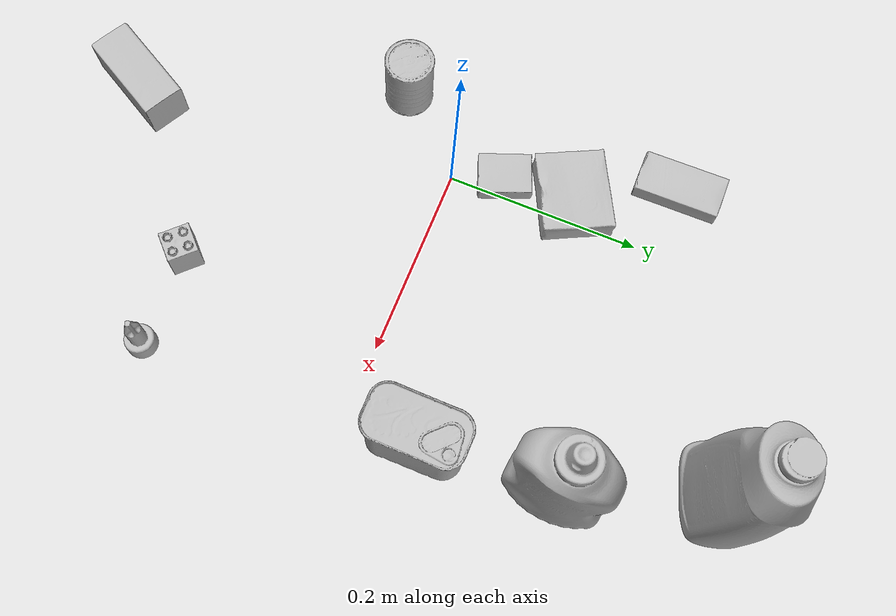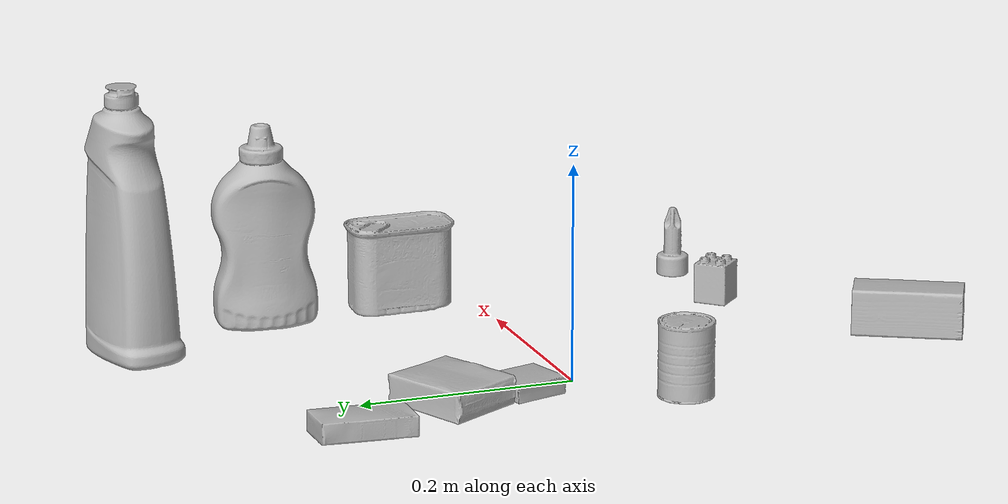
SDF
<sdf version="1.4">
  <world name="default">
    <light name="light1" type="point">
      <pose>0 0 1 0 0 0</pose>
      <diffuse>3 3 3 1</diffuse>
      <specular>3 3 3 1</specular>
    </light>
    <light name="light2" type="point">
      <pose>0 0.5 2 0 0 0</pose>
      <diffuse>1 1 1 1</diffuse>
      <specular>1 1 1 1</specular>
    </light>
    <light name="light3" type="point">
      <pose>0 0.5 2 0 0 0</pose>
      <diffuse>3 3 3 1</diffuse>
      <specular>3 3 3 1</specular>
    </light>
    <scene>
      <ambient>0.7 0.7 0.7</ambient>
    </scene>
    <model name="bottle1">
      <link name="link_bottle1">
        <collision name="default">
          <geometry>
            <mesh>
              <uri>model://bleach_cleanser/collision_meshes/collision.obj</uri>
              <scale>1.0 1.0 1.0</scale>
            </mesh>
          </geometry>
          <surface>
            <friction>
              <ode>
                <mu>0.5</mu>
                <mu2>0.5</mu2>
              </ode>
            </friction>
          <contact>
        <ode>
            <max_vel>0</max_vel>
            <min_depth>0.0001</min_depth>
            <kp>1e8</kp>
        </ode>
    </contact></surface>
        </collision>
        <visual name="default">
          <geometry>
            <mesh>
              <uri>model://bleach_cleanser/visual_meshes/visual.dae</uri>
              <scale>1.0 1.0 1.0</scale>
            </mesh>
          </geometry>
        </visual>
        <inertial>
          <mass>1.578364610671997</mass>
          <pose>0.00012193182919872925 0.003783882362768054 -0.024421613663434982 -0.07381669869228723 0.000420116582496686 -0.006875050642452563</pose>
          <inertia>
            <ixx>0.00768213</ixx>
            <iyy>0.0071586203</iyy>
            <izz>0.0013134446</izz>
            <ixy>0</ixy>
            <ixz>0</ixz>
            <iyz>0</iyz>
          </inertia>
        </inertial>
      </link>
      <pose>0.21065887808799744 0.3479423224925995 0.12578412890434265 -0.00019956883201037228 1.6447478870117232e-05 -1.2785718475436674</pose>
    </model>
    <model name="bottle2">
      <link name="link_bottle2">
        <collision name="default">
          <geometry>
            <mesh>
              <uri>model://mustard_bottle/collision_meshes/collision.obj</uri>
              <scale>1.0 1.0 1.0</scale>
            </mesh>
          </geometry>
          <surface>
            <friction>
              <ode>
                <mu>0.5</mu>
                <mu2>0.5</mu2>
              </ode>
            </friction>
          <contact>
        <ode>
            <max_vel>0</max_vel>
            <min_depth>0.0001</min_depth>
            <kp>1e8</kp>
        </ode>
    </contact></surface>
        </collision>
        <visual name="default">
          <geometry>
            <mesh>
              <uri>model://mustard_bottle/visual_meshes/visual.dae</uri>
              <scale>1.0 1.0 1.0</scale>
            </mesh>
          </geometry>
        </visual>
        <inertial>
          <mass>0.5896905064582825</mass>
          <pose>0.000503245391882956 -0.00015647403779439628 -0.0174757931381464 0.00041823284967905286 0.0009465779461724547 0.024853724225743102</pose>
          <inertia>
            <ixx>0.00163749</ixx>
            <iyy>0.0014367587</iyy>
            <izz>0.00043156123</izz>
            <ixy>0</ixy>
            <ixz>0</ixz>
            <iyz>0</iyz>
          </inertia>
        </inertial>
      </link>
      <pose>0.2634090781211853 0.20744812488555908 0.09583087265491486 -0.012050269193452761 -0.004890020589751272 -0.11364913993384985</pose>
    </model>
    <model name="toy1">
      <link name="link_toy1">
        <collision name="default">
          <geometry>
            <mesh>
              <uri>model://b_lego_duplo/collision_meshes/collision.obj</uri>
              <scale>1.0 1.0 1.0</scale>
            </mesh>
          </geometry>
          <surface>
            <friction>
              <ode>
                <mu>0.5</mu>
                <mu2>0.5</mu2>
              </ode>
            </friction>
          <contact>
        <ode>
            <max_vel>0</max_vel>
            <min_depth>0.0001</min_depth>
            <kp>1e8</kp>
        </ode>
    </contact></surface>
        </collision>
        <visual name="default">
          <geometry>
            <mesh>
              <uri>model://b_lego_duplo/visual_meshes/visual.dae</uri>
              <scale>1.0 1.0 1.0</scale>
            </mesh>
          </geometry>
        </visual>
        <inertial>
          <mass>0.04927889630198479</mass>
          <pose>-0.00011053016351070255 -9.152428901870735e-06 0.0019294293597340584 -0.03749545918935276 -0.026353596882306905 0.4519115393215097</pose>
          <inertia>
            <ixx>1.0085294e-05</ixx>
            <iyy>1.015309e-05</iyy>
            <izz>8.985672e-06</izz>
            <ixy>0</ixy>
            <ixz>0</ixz>
            <iyz>0</iyz>
          </inertia>
        </inertial>
      </link>
      <pose>0.18494507670402527 -0.21711574494838715 0.02181500382721424 -2.9226765524416934e-07 -3.281551262742486e-07 -0.7827550976956394</pose>
    </model>
    <model name="toy2">
      <link name="link_toy2">
        <collision name="default">
          <geometry>
            <mesh>
              <uri>model://d_toy_airplane/collision_meshes/collision.obj</uri>
              <scale>1.0 1.0 1.0</scale>
            </mesh>
          </geometry>
          <surface>
            <friction>
              <ode>
                <mu>0.5</mu>
                <mu2>0.5</mu2>
              </ode>
            </friction>
          <contact>
        <ode>
            <max_vel>0</max_vel>
            <min_depth>0.0001</min_depth>
            <kp>1e8</kp>
        </ode>
    </contact></surface>
        </collision>
        <visual name="default">
          <geometry>
            <mesh>
              <uri>model://d_toy_airplane/visual_meshes/visual.dae</uri>
              <scale>1.0 1.0 1.0</scale>
            </mesh>
          </geometry>
        </visual>
        <inertial>
          <mass>0.023543989285826683</mass>
          <pose>9.41029647947289e-05 -5.8093268307857215e-05 -0.011728093028068542 0.0002670074791080515 0.004678977428991067 0.5194709842729006</pose>
          <inertia>
            <ixx>7.058034e-06</ixx>
            <iyy>7.063356e-06</iyy>
            <izz>2.1308651e-06</izz>
            <ixy>0</ixy>
            <ixz>0</ixz>
            <iyz>0</iyz>
          </inertia>
        </inertial>
      </link>
      <pose>0.2836911976337433 -0.21355396509170532 0.03333878517150879 -3.994872837363172e-05 -0.00017525125162870634 1.9202847075281368</pose>
    </model>
    <model name="can1">
      <link name="link_can1">
        <collision name="default">
          <geometry>
            <mesh>
              <uri>model://master_chef_can/collision_meshes/collision.obj</uri>
              <scale>0.5 0.5 0.5</scale>
            </mesh>
          </geometry>
          <surface>
            <friction>
              <ode>
                <mu>0.5</mu>
                <mu2>0.5</mu2>
              </ode>
            </friction>
          <contact>
        <ode>
            <max_vel>0</max_vel>
            <min_depth>0.0001</min_depth>
            <kp>1e8</kp>
        </ode>
    </contact></surface>
        </collision>
        <visual name="default">
          <geometry>
            <mesh>
              <uri>model://master_chef_can/visual_meshes/visual.dae</uri>
              <scale>0.5 0.5 0.5</scale>
            </mesh>
          </geometry>
        </visual>
        <inertial>
          <mass>0.13489052653312683</mass>
          <pose>-4.6619643399026245e-05 1.392684936263322e-07 -5.080000119050965e-05 -0.0017995055981966167 0.0006479432683086387 -0.6102521024359563</pose>
          <inertia>
            <ixx>7.9171594e-05</ixx>
            <iyy>7.85889e-05</iyy>
            <izz>4.3748354e-05</izz>
            <ixy>0</ixy>
            <ixz>0</ixz>
            <iyz>0</iyz>
          </inertia>
        </inertial>
      </link>
      <pose>-0.07390523701906204 -0.07868801057338715 0.035301998257637024 -1.5688764482366685e-06 -1.1807300814428137e-06 2.818672878754001</pose>
    </model>
    <model name="can2">
      <link name="link_can2">
        <collision name="default">
          <geometry>
            <mesh>
              <uri>model://potted_meat_can/collision_meshes/collision.obj</uri>
              <scale>1.0 1.0 1.0</scale>
            </mesh>
          </geometry>
          <surface>
            <friction>
              <ode>
                <mu>0.5</mu>
                <mu2>0.5</mu2>
              </ode>
            </friction>
          <contact>
        <ode>
            <max_vel>0</max_vel>
            <min_depth>0.0001</min_depth>
            <kp>1e8</kp>
        </ode>
    </contact></surface>
        </collision>
        <visual name="default">
          <geometry>
            <mesh>
              <uri>model://potted_meat_can/visual_meshes/visual.dae</uri>
              <scale>1.0 1.0 1.0</scale>
            </mesh>
          </geometry>
        </visual>
        <inertial>
          <mass>0.4512253701686859</mass>
          <pose>0.00022888150124344975 -5.9891150158364326e-05 -0.0006367433816194534 -0.028093371406289817 -0.007232609295346345 0.015406271951796056</pose>
          <inertia>
            <ixx>0.00058045425</ixx>
            <iyy>0.00035267006</iyy>
            <izz>0.00042216998</izz>
            <ixy>0</ixy>
            <ixz>0</ixz>
            <iyz>0</iyz>
          </inertia>
        </inertial>
      </link>
      <pose>0.2711115777492523 0.07192216068506241 0.04212799668312073 -9.947793015815652e-08 -3.9772758901060585e-07 3.131273473850651</pose>
    </model>
    <model name="box1">
      <link name="link_box1">
        <collision name="default">
          <geometry>
            <mesh>
              <uri>model://pudding_box/collision_meshes/collision.obj</uri>
              <scale>0.5 0.5 0.5</scale>
            </mesh>
          </geometry>
          <surface>
            <friction>
              <ode>
                <mu>0.5</mu>
                <mu2>0.5</mu2>
              </ode>
            </friction>
          <contact>
        <ode>
            <max_vel>0</max_vel>
            <min_depth>0.0001</min_depth>
            <kp>1e8</kp>
        </ode>
    </contact></surface>
        </collision>
        <visual name="default">
          <geometry>
            <mesh>
              <uri>model://pudding_box/visual_meshes/visual.dae</uri>
              <scale>0.5 0.5 0.5</scale>
            </mesh>
          </geometry>
        </visual>
        <inertial>
          <mass>0.02510015107691288</mass>
          <pose>0.00024474109522998333 0.0004033942532259971 -0.0002594413817860186 0.005213101332996491 -0.0066037987089797995 0.020079823298230236</pose>
          <inertia>
            <ixx>7.093607e-06</ixx>
            <iyy>4.7726294e-06</iyy>
            <izz>1.04755645e-05</izz>
            <ixy>0</ixy>
            <ixz>0</ixz>
            <iyz>0</iyz>
          </inertia>
        </inertial>
      </link>
      <pose>-0.01922045275568962 0.05088913440704346 0.009862903505563736 0.022349857307870546 -0.01139075050949561 0.35466968536049454</pose>
    </model>
    <model name="box2">
      <link name="link_box2">
        <collision name="default">
          <geometry>
            <mesh>
              <uri>model://gelatin_box/collision_meshes/collision.obj</uri>
              <scale>1.0 1.0 1.0</scale>
            </mesh>
          </geometry>
          <surface>
            <friction>
              <ode>
                <mu>0.5</mu>
                <mu2>0.5</mu2>
              </ode>
            </friction>
          <contact>
        <ode>
            <max_vel>0</max_vel>
            <min_depth>0.0001</min_depth>
            <kp>1e8</kp>
        </ode>
    </contact></surface>
        </collision>
        <visual name="default">
          <geometry>
            <mesh>
              <uri>model://gelatin_box/visual_meshes/visual.dae</uri>
              <scale>1.0 1.0 1.0</scale>
            </mesh>
          </geometry>
        </visual>
        <inertial>
          <mass>0.2452477514743805</mass>
          <pose>0.000431961816502735 0.00011156871187267825 -0.0003640321083366871 -0.0010503720803081407 -0.004755818225601415 0.01644055574590794</pose>
          <inertia>
            <ixx>0.0001731249</ixx>
            <iyy>0.0001236622</iyy>
            <izz>0.00026353472</izz>
            <ixy>0</ixy>
            <ixz>0</ixz>
            <iyz>0</iyz>
          </inertia>
        </inertial>
      </link>
      <pose>-0.02525290660560131 0.12305345386266708 0.015168312937021255 0.005596603286054079 -0.007303603298598464 -1.1146342943114573</pose>
    </model>
    <model name="box3">
      <link name="link_box3">
        <collision name="default">
          <geometry>
            <mesh>
              <uri>model://sugar_box/collision_meshes/collision.obj</uri>
              <scale>0.5 0.5 0.5</scale>
            </mesh>
          </geometry>
          <surface>
            <friction>
              <ode>
                <mu>0.5</mu>
                <mu2>0.5</mu2>
              </ode>
            </friction>
          <contact>
        <ode>
            <max_vel>0</max_vel>
            <min_depth>0.0001</min_depth>
            <kp>1e8</kp>
        </ode>
    </contact></surface>
        </collision>
        <visual name="default">
          <geometry>
            <mesh>
              <uri>model://sugar_box/visual_meshes/visual.dae</uri>
              <scale>0.5 0.5 0.5</scale>
            </mesh>
          </geometry>
        </visual>
        <inertial>
          <mass>0.12277840822935104</mass>
          <pose>0.0005171863595023751 1.9245549992774613e-05 -0.00018182402709499002 -0.0004046257474220826 0.0010506635214397083 0.0026153787892127145</pose>
          <inertia>
            <ixx>2.5574656e-05</ixx>
            <iyy>8.2662555e-05</iyy>
            <izz>9.895694e-05</izz>
            <ixy>0</ixy>
            <ixz>0</ixz>
            <iyz>0</iyz>
          </inertia>
        </inertial>
      </link>
      <pose>-0.07680697739124298 0.2217143177986145 0.011399306356906891 0.0007751223413117025 -0.0234324778555135 1.5650808012671302</pose>
    </model>
    <model name="box4">
      <link name="link_box4">
        <collision name="default">
          <geometry>
            <mesh>
              <uri>model://wood_block/collision_meshes/collision.obj</uri>
              <scale>0.5 0.5 0.5</scale>
            </mesh>
          </geometry>
          <surface>
            <friction>
              <ode>
                <mu>0.5</mu>
                <mu2>0.5</mu2>
              </ode>
            </friction>
          <contact>
        <ode>
            <max_vel>0</max_vel>
            <min_depth>0.0001</min_depth>
            <kp>1e8</kp>
        </ode>
    </contact></surface>
        </collision>
        <visual name="default">
          <geometry>
            <mesh>
              <uri>model://wood_block/visual_meshes/visual.dae</uri>
              <scale>0.5 0.5 0.5</scale>
            </mesh>
          </geometry>
        </visual>
        <inertial>
          <mass>0.2967980206012726</mass>
          <pose>-2.9066577553749084e-06 -0.00028540470520965755 0.00013204291462898254 -0.05220902064674581 -0.005192696668457315 -0.006861378272965977</pose>
          <inertia>
            <ixx>9.929016e-05</ixx>
            <iyy>0.00031365763</iyy>
            <izz>0.00031248436</izz>
            <ixy>0</ixy>
            <ixz>0</ixz>
            <iyz>0</iyz>
          </inertia>
        </inertial>
      </link>
      <pose>0.02816212736070156 -0.3444570302963257 0.0226292721927166 -0.005208494821933265 0.005718672022582419 -2.064379878121474</pose>
    </model>
  <physics type="ode">
      <max_contacts>50</max_contacts>
      <ode>
        <solver>
          <type>quick</type>
          <iters>75</iters>
        </solver>
        <constraints>
          <contact_max_correcting_vel>0</contact_max_correcting_vel>
          <contact_surface_layer>0</contact_surface_layer>
        </constraints>
      </ode>
    </physics></world>
</sdf>
